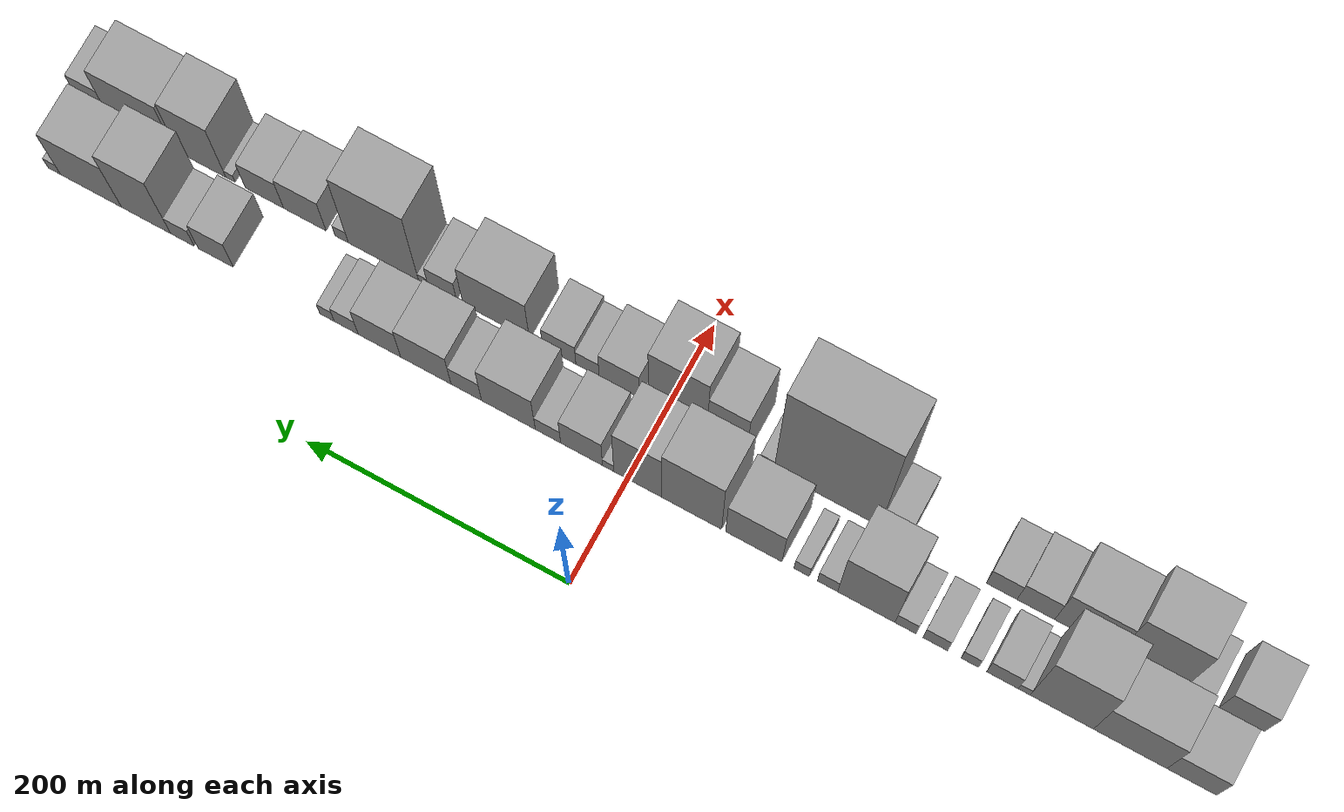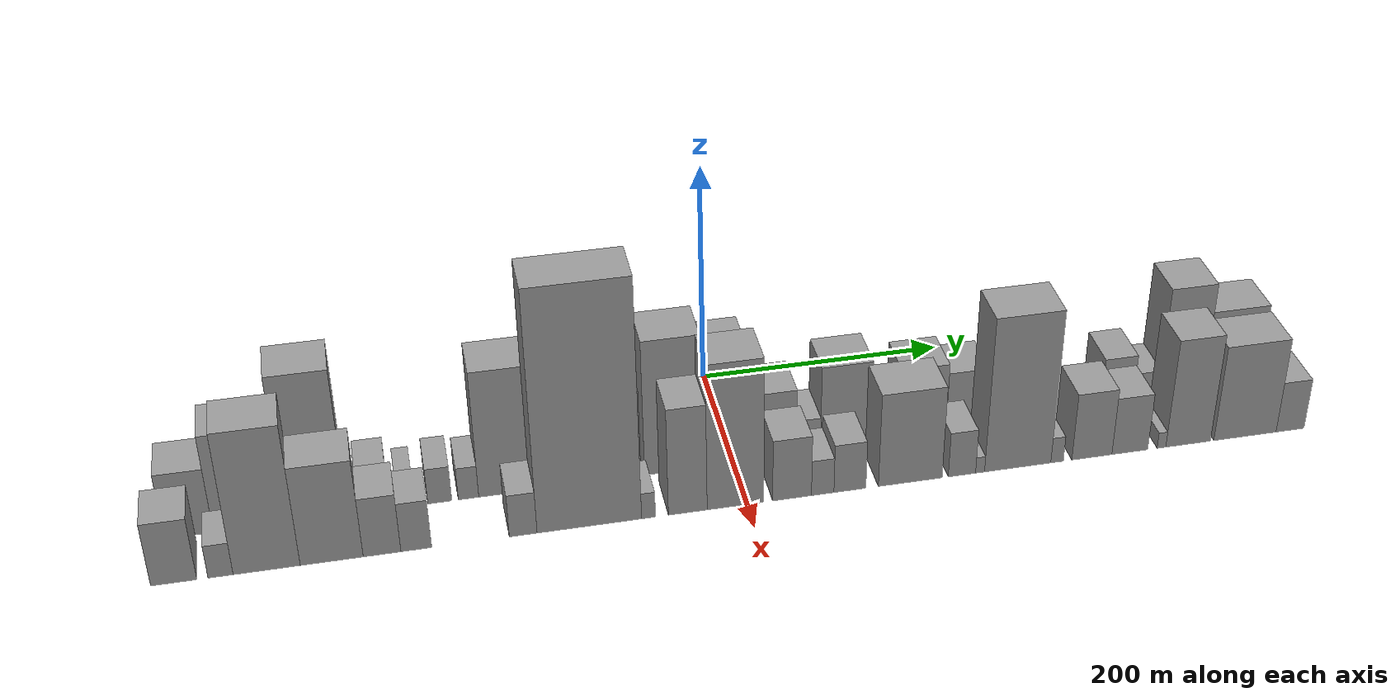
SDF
<sdf version="1.6">
 <world name="default">
  <scene>
   <sky><clouds><speed>12</speed></clouds></sky>
   <ambient>0.4 0.4 0.4 1</ambient>
   <background>0.7 0.7 0.7 1</background>
   <shadows>1</shadows>
  </scene>
  <gravity>0 0 -9.8066</gravity>
  <magnetic_field>6e-06 2.3e-05 -4.2e-05</magnetic_field>
  <physics default="0" name="default_physics" type="ode">
   <ode>
    <solver>
     <type>quick</type>
     <iters>10</iters>
     <sor>1.0</sor>
     <use_dynamic_moi_rescaling>0</use_dynamic_moi_rescaling>
    </solver>
    <constraints>
     <cfm>0</cfm>
     <erp>0.2</erp>
     <contact_max_correcting_vel>100</contact_max_correcting_vel>
     <contact_surface_layer>0.001</contact_surface_layer>
    </constraints>
   </ode>
   <max_step_size>0.004</max_step_size>
   <real_time_factor>1</real_time_factor>
   <real_time_update_rate>250</real_time_update_rate>
  </physics>
  <light name="sun" type="directional">
   <pose>0 0 10 0 0 0</pose>
   <diffuse>0.8 0.8 0.8 1</diffuse>
   <specular>0.2 0.2 0.2 1</specular>
   <attenuation>
    <range>1000</range>
    <constant>0.9</constant>
    <linear>0.01</linear>
    <quadratic>0.001</quadratic>
   </attenuation>
   <direction>-0.5 0.1 -0.9</direction>
  </light>
  <model name="building_1">
   <static>1</static>
   <pose>100.0000 -417.0607 0 0.000000 0.000000 0.000000</pose>
   <link name="link">
    <pose>0 0 30.00 0 0 0</pose>
    <collision name="collision"><geometry><box><size>40.0000 35.8785 60.0000</size></box></geometry></collision>
    <visual name="visual">
     <cast_shadows>0</cast_shadows>
     <geometry><box><size>40.0000 35.8785 60.0000</size></box></geometry>
     <material>
      <script>
       <uri>model://grey_wall/materials/scripts</uri>
       <uri>model://grey_wall/materials/textures</uri>
       <name>vrc/grey_wall</name>
      </script>
     </material>
    </visual>
   </link>
  </model>
  <model name="building_2">
   <static>1</static>
   <pose>100.0000 -372.4183 0 0.000000 0.000000 0.000000</pose>
   <link name="link">
    <pose>0 0 45.00 0 0 0</pose>
    <collision name="collision"><geometry><box><size>40.0000 53.4063 90.0000</size></box></geometry></collision>
    <visual name="visual">
     <cast_shadows>0</cast_shadows>
     <geometry><box><size>40.0000 53.4063 90.0000</size></box></geometry>
     <material>
      <script>
       <uri>model://grey_wall/materials/scripts</uri>
       <uri>model://grey_wall/materials/textures</uri>
       <name>vrc/grey_wall</name>
      </script>
     </material>
    </visual>
   </link>
  </model>
  <model name="building_3">
   <static>1</static>
   <pose>100.0000 -322.5561 0 0.000000 0.000000 0.000000</pose>
   <link name="link">
    <pose>0 0 67.50 0 0 0</pose>
    <collision name="collision"><geometry><box><size>40.0000 46.3182 135.0000</size></box></geometry></collision>
    <visual name="visual">
     <cast_shadows>0</cast_shadows>
     <geometry><box><size>40.0000 46.3182 135.0000</size></box></geometry>
     <material>
      <script>
       <uri>model://grey_wall/materials/scripts</uri>
       <uri>model://grey_wall/materials/textures</uri>
       <name>vrc/grey_wall</name>
      </script>
     </material>
    </visual>
   </link>
  </model>
  <model name="building_4">
   <static>1</static>
   <pose>100.0000 -295.0070 0 0.000000 0.000000 0.000000</pose>
   <link name="link">
    <pose>0 0 9.00 0 0 0</pose>
    <collision name="collision"><geometry><box><size>40.0000 8.7800 18.0000</size></box></geometry></collision>
    <visual name="visual">
     <cast_shadows>0</cast_shadows>
     <geometry><box><size>40.0000 8.7800 18.0000</size></box></geometry>
     <material>
      <script>
       <uri>model://grey_wall/materials/scripts</uri>
       <uri>model://grey_wall/materials/textures</uri>
       <name>vrc/grey_wall</name>
      </script>
     </material>
    </visual>
   </link>
  </model>
  <model name="building_5">
   <static>1</static>
   <pose>100.0000 -279.0320 0 0.000000 0.000000 0.000000</pose>
   <link name="link">
    <pose>0 0 19.50 0 0 0</pose>
    <collision name="collision"><geometry><box><size>40.0000 23.1700 39.0000</size></box></geometry></collision>
    <visual name="visual">
     <cast_shadows>0</cast_shadows>
     <geometry><box><size>40.0000 23.1700 39.0000</size></box></geometry>
     <material>
      <script>
       <uri>model://grey_wall/materials/scripts</uri>
       <uri>model://grey_wall/materials/textures</uri>
       <name>vrc/grey_wall</name>
      </script>
     </material>
    </visual>
   </link>
  </model>
  <model name="building_6">
   <static>1</static>
   <pose>100.0000 -255.0433 0 0.000000 0.000000 0.000000</pose>
   <link name="link">
    <pose>0 0 13.50 0 0 0</pose>
    <collision name="collision"><geometry><box><size>40.0000 12.8074 27.0000</size></box></geometry></collision>
    <visual name="visual">
     <cast_shadows>0</cast_shadows>
     <geometry><box><size>40.0000 12.8074 27.0000</size></box></geometry>
     <material>
      <script>
       <uri>model://grey_wall/materials/scripts</uri>
       <uri>model://grey_wall/materials/textures</uri>
       <name>vrc/grey_wall</name>
      </script>
     </material>
    </visual>
   </link>
  </model>
  <model name="building_7">
   <static>1</static>
   <pose>100.0000 -229.5020 0 0.000000 0.000000 0.000000</pose>
   <link name="link">
    <pose>0 0 16.50 0 0 0</pose>
    <collision name="collision"><geometry><box><size>40.0000 18.2751 33.0000</size></box></geometry></collision>
    <visual name="visual">
     <cast_shadows>0</cast_shadows>
     <geometry><box><size>40.0000 18.2751 33.0000</size></box></geometry>
     <material>
      <script>
       <uri>model://grey_wall/materials/scripts</uri>
       <uri>model://grey_wall/materials/textures</uri>
       <name>vrc/grey_wall</name>
      </script>
     </material>
    </visual>
   </link>
  </model>
  <model name="building_8">
   <static>1</static>
   <pose>100.0000 -207.5110 0 0.000000 0.000000 0.000000</pose>
   <link name="link">
    <pose>0 0 15.00 0 0 0</pose>
    <collision name="collision"><geometry><box><size>40.0000 15.7071 30.0000</size></box></geometry></collision>
    <visual name="visual">
     <cast_shadows>0</cast_shadows>
     <geometry><box><size>40.0000 15.7071 30.0000</size></box></geometry>
     <material>
      <script>
       <uri>model://grey_wall/materials/scripts</uri>
       <uri>model://grey_wall/materials/textures</uri>
       <name>vrc/grey_wall</name>
      </script>
     </material>
    </visual>
   </link>
  </model>
  <model name="building_9">
   <static>1</static>
   <pose>100.0000 -178.4151 0 0.000000 0.000000 0.000000</pose>
   <link name="link">
    <pose>0 0 58.50 0 0 0</pose>
    <collision name="collision"><geometry><box><size>40.0000 42.4847 117.0000</size></box></geometry></collision>
    <visual name="visual">
     <cast_shadows>0</cast_shadows>
     <geometry><box><size>40.0000 42.4847 117.0000</size></box></geometry>
     <material>
      <script>
       <uri>model://grey_wall/materials/scripts</uri>
       <uri>model://grey_wall/materials/textures</uri>
       <name>vrc/grey_wall</name>
      </script>
     </material>
    </visual>
   </link>
  </model>
  <model name="building_10">
   <static>1</static>
   <pose>100.0000 -149.6423 0 0.000000 0.000000 0.000000</pose>
   <link name="link">
    <pose>0 0 15.00 0 0 0</pose>
    <collision name="collision"><geometry><box><size>40.0000 15.0607 30.0000</size></box></geometry></collision>
    <visual name="visual">
     <cast_shadows>0</cast_shadows>
     <geometry><box><size>40.0000 15.0607 30.0000</size></box></geometry>
     <material>
      <script>
       <uri>model://grey_wall/materials/scripts</uri>
       <uri>model://grey_wall/materials/textures</uri>
       <name>vrc/grey_wall</name>
      </script>
     </material>
    </visual>
   </link>
  </model>
  <model name="building_11">
   <static>1</static>
   <pose>100.0000 -130.3610 0 0.000000 0.000000 0.000000</pose>
   <link name="link">
    <pose>0 0 13.50 0 0 0</pose>
    <collision name="collision"><geometry><box><size>40.0000 11.5019 27.0000</size></box></geometry></collision>
    <visual name="visual">
     <cast_shadows>0</cast_shadows>
     <geometry><box><size>40.0000 11.5019 27.0000</size></box></geometry>
     <material>
      <script>
       <uri>model://grey_wall/materials/scripts</uri>
       <uri>model://grey_wall/materials/textures</uri>
       <name>vrc/grey_wall</name>
      </script>
     </material>
    </visual>
   </link>
  </model>
  <model name="building_12">
   <static>1</static>
   <pose>100.0000 -94.5166 0 0.000000 0.000000 0.000000</pose>
   <link name="link">
    <pose>0 0 40.50 0 0 0</pose>
    <collision name="collision"><geometry><box><size>40.0000 42.1870 81.0000</size></box></geometry></collision>
    <visual name="visual">
     <cast_shadows>0</cast_shadows>
     <geometry><box><size>40.0000 42.1870 81.0000</size></box></geometry>
     <material>
      <script>
       <uri>model://grey_wall/materials/scripts</uri>
       <uri>model://grey_wall/materials/textures</uri>
       <name>vrc/grey_wall</name>
      </script>
     </material>
    </visual>
   </link>
  </model>
  <model name="building_13">
   <static>1</static>
   <pose>100.0000 -47.6805 0 0.000000 0.000000 0.000000</pose>
   <link name="link">
    <pose>0 0 63.00 0 0 0</pose>
    <collision name="collision"><geometry><box><size>40.0000 45.4853 126.0000</size></box></geometry></collision>
    <visual name="visual">
     <cast_shadows>0</cast_shadows>
     <geometry><box><size>40.0000 45.4853 126.0000</size></box></geometry>
     <material>
      <script>
       <uri>model://grey_wall/materials/scripts</uri>
       <uri>model://grey_wall/materials/textures</uri>
       <name>vrc/grey_wall</name>
      </script>
     </material>
    </visual>
   </link>
  </model>
  <model name="building_14">
   <static>1</static>
   <pose>100.0000 -7.0533 0 0.000000 0.000000 0.000000</pose>
   <link name="link">
    <pose>0 0 55.50 0 0 0</pose>
    <collision name="collision"><geometry><box><size>40.0000 35.7691 111.0000</size></box></geometry></collision>
    <visual name="visual">
     <cast_shadows>0</cast_shadows>
     <geometry><box><size>40.0000 35.7691 111.0000</size></box></geometry>
     <material>
      <script>
       <uri>model://grey_wall/materials/scripts</uri>
       <uri>model://grey_wall/materials/textures</uri>
       <name>vrc/grey_wall</name>
      </script>
     </material>
    </visual>
   </link>
  </model>
  <model name="building_15">
   <static>1</static>
   <pose>100.0000 15.0990 0 0.000000 0.000000 0.000000</pose>
   <link name="link">
    <pose>0 0 9.00 0 0 0</pose>
    <collision name="collision"><geometry><box><size>40.0000 8.5355 18.0000</size></box></geometry></collision>
    <visual name="visual">
     <cast_shadows>0</cast_shadows>
     <geometry><box><size>40.0000 8.5355 18.0000</size></box></geometry>
     <material>
      <script>
       <uri>model://grey_wall/materials/scripts</uri>
       <uri>model://grey_wall/materials/textures</uri>
       <name>vrc/grey_wall</name>
      </script>
     </material>
    </visual>
   </link>
  </model>
  <model name="building_16">
   <static>1</static>
   <pose>100.0000 35.2143 0 0.000000 0.000000 0.000000</pose>
   <link name="link">
    <pose>0 0 31.50 0 0 0</pose>
    <collision name="collision"><geometry><box><size>40.0000 31.6950 63.0000</size></box></geometry></collision>
    <visual name="visual">
     <cast_shadows>0</cast_shadows>
     <geometry><box><size>40.0000 31.6950 63.0000</size></box></geometry>
     <material>
      <script>
       <uri>model://grey_wall/materials/scripts</uri>
       <uri>model://grey_wall/materials/textures</uri>
       <name>vrc/grey_wall</name>
      </script>
     </material>
    </visual>
   </link>
  </model>
  <model name="building_17">
   <static>1</static>
   <pose>100.0000 60.7238 0 0.000000 0.000000 0.000000</pose>
   <link name="link">
    <pose>0 0 16.50 0 0 0</pose>
    <collision name="collision"><geometry><box><size>40.0000 19.3241 33.0000</size></box></geometry></collision>
    <visual name="visual">
     <cast_shadows>0</cast_shadows>
     <geometry><box><size>40.0000 19.3241 33.0000</size></box></geometry>
     <material>
      <script>
       <uri>model://grey_wall/materials/scripts</uri>
       <uri>model://grey_wall/materials/textures</uri>
       <name>vrc/grey_wall</name>
      </script>
     </material>
    </visual>
   </link>
  </model>
  <model name="building_18">
   <static>1</static>
   <pose>100.0000 90.9148 0 0.000000 0.000000 0.000000</pose>
   <link name="link">
    <pose>0 0 40.50 0 0 0</pose>
    <collision name="collision"><geometry><box><size>40.0000 41.0580 81.0000</size></box></geometry></collision>
    <visual name="visual">
     <cast_shadows>0</cast_shadows>
     <geometry><box><size>40.0000 41.0580 81.0000</size></box></geometry>
     <material>
      <script>
       <uri>model://grey_wall/materials/scripts</uri>
       <uri>model://grey_wall/materials/textures</uri>
       <name>vrc/grey_wall</name>
      </script>
     </material>
    </visual>
   </link>
  </model>
  <model name="building_19">
   <static>1</static>
   <pose>100.0000 123.1200 0 0.000000 0.000000 0.000000</pose>
   <link name="link">
    <pose>0 0 22.50 0 0 0</pose>
    <collision name="collision"><geometry><box><size>40.0000 23.3524 45.0000</size></box></geometry></collision>
    <visual name="visual">
     <cast_shadows>0</cast_shadows>
     <geometry><box><size>40.0000 23.3524 45.0000</size></box></geometry>
     <material>
      <script>
       <uri>model://grey_wall/materials/scripts</uri>
       <uri>model://grey_wall/materials/textures</uri>
       <name>vrc/grey_wall</name>
      </script>
     </material>
    </visual>
   </link>
  </model>
  <model name="building_20">
   <static>1</static>
   <pose>100.0000 154.1357 0 0.000000 0.000000 0.000000</pose>
   <link name="link">
    <pose>0 0 34.50 0 0 0</pose>
    <collision name="collision"><geometry><box><size>40.0000 38.6789 69.0000</size></box></geometry></collision>
    <visual name="visual">
     <cast_shadows>0</cast_shadows>
     <geometry><box><size>40.0000 38.6789 69.0000</size></box></geometry>
     <material>
      <script>
       <uri>model://grey_wall/materials/scripts</uri>
       <uri>model://grey_wall/materials/textures</uri>
       <name>vrc/grey_wall</name>
      </script>
     </material>
    </visual>
   </link>
  </model>
  <model name="building_21">
   <static>1</static>
   <pose>100.0000 189.8916 0 0.000000 0.000000 0.000000</pose>
   <link name="link">
    <pose>0 0 30.00 0 0 0</pose>
    <collision name="collision"><geometry><box><size>40.0000 32.8330 60.0000</size></box></geometry></collision>
    <visual name="visual">
     <cast_shadows>0</cast_shadows>
     <geometry><box><size>40.0000 32.8330 60.0000</size></box></geometry>
     <material>
      <script>
       <uri>model://grey_wall/materials/scripts</uri>
       <uri>model://grey_wall/materials/textures</uri>
       <name>vrc/grey_wall</name>
      </script>
     </material>
    </visual>
   </link>
  </model>
  <model name="building_22">
   <static>1</static>
   <pose>100.0000 215.5773 0 0.000000 0.000000 0.000000</pose>
   <link name="link">
    <pose>0 0 16.50 0 0 0</pose>
    <collision name="collision"><geometry><box><size>40.0000 18.5383 33.0000</size></box></geometry></collision>
    <visual name="visual">
     <cast_shadows>0</cast_shadows>
     <geometry><box><size>40.0000 18.5383 33.0000</size></box></geometry>
     <material>
      <script>
       <uri>model://grey_wall/materials/scripts</uri>
       <uri>model://grey_wall/materials/textures</uri>
       <name>vrc/grey_wall</name>
      </script>
     </material>
    </visual>
   </link>
  </model>
  <model name="building_23">
   <static>1</static>
   <pose>100.0000 230.4463 0 0.000000 0.000000 0.000000</pose>
   <link name="link">
    <pose>0 0 12.00 0 0 0</pose>
    <collision name="collision"><geometry><box><size>40.0000 11.1996 24.0000</size></box></geometry></collision>
    <visual name="visual">
     <cast_shadows>0</cast_shadows>
     <geometry><box><size>40.0000 11.1996 24.0000</size></box></geometry>
     <material>
      <script>
       <uri>model://grey_wall/materials/scripts</uri>
       <uri>model://grey_wall/materials/textures</uri>
       <name>vrc/grey_wall</name>
      </script>
     </material>
    </visual>
   </link>
  </model>
  <model name="building_24">
   <static>1</static>
   <pose>100.0000 317.1471 0 0.000000 0.000000 0.000000</pose>
   <link name="link">
    <pose>0 0 27.00 0 0 0</pose>
    <collision name="collision"><geometry><box><size>40.0000 27.4007 54.0000</size></box></geometry></collision>
    <visual name="visual">
     <cast_shadows>0</cast_shadows>
     <geometry><box><size>40.0000 27.4007 54.0000</size></box></geometry>
     <material>
      <script>
       <uri>model://grey_wall/materials/scripts</uri>
       <uri>model://grey_wall/materials/textures</uri>
       <name>vrc/grey_wall</name>
      </script>
     </material>
    </visual>
   </link>
  </model>
  <model name="building_25">
   <static>1</static>
   <pose>100.0000 343.0963 0 0.000000 0.000000 0.000000</pose>
   <link name="link">
    <pose>0 0 18.00 0 0 0</pose>
    <collision name="collision"><geometry><box><size>40.0000 18.4977 36.0000</size></box></geometry></collision>
    <visual name="visual">
     <cast_shadows>0</cast_shadows>
     <geometry><box><size>40.0000 18.4977 36.0000</size></box></geometry>
     <material>
      <script>
       <uri>model://grey_wall/materials/scripts</uri>
       <uri>model://grey_wall/materials/textures</uri>
       <name>vrc/grey_wall</name>
      </script>
     </material>
    </visual>
   </link>
  </model>
  <model name="building_26">
   <static>1</static>
   <pose>100.0000 371.6113 0 0.000000 0.000000 0.000000</pose>
   <link name="link">
    <pose>0 0 57.00 0 0 0</pose>
    <collision name="collision"><geometry><box><size>40.0000 38.5324 114.0000</size></box></geometry></collision>
    <visual name="visual">
     <cast_shadows>0</cast_shadows>
     <geometry><box><size>40.0000 38.5324 114.0000</size></box></geometry>
     <material>
      <script>
       <uri>model://grey_wall/materials/scripts</uri>
       <uri>model://grey_wall/materials/textures</uri>
       <name>vrc/grey_wall</name>
      </script>
     </material>
    </visual>
   </link>
  </model>
  <model name="building_27">
   <static>1</static>
   <pose>100.0000 415.0386 0 0.000000 0.000000 0.000000</pose>
   <link name="link">
    <pose>0 0 43.50 0 0 0</pose>
    <collision name="collision"><geometry><box><size>40.0000 48.3222 87.0000</size></box></geometry></collision>
    <visual name="visual">
     <cast_shadows>0</cast_shadows>
     <geometry><box><size>40.0000 48.3222 87.0000</size></box></geometry>
     <material>
      <script>
       <uri>model://grey_wall/materials/scripts</uri>
       <uri>model://grey_wall/materials/textures</uri>
       <name>vrc/grey_wall</name>
      </script>
     </material>
    </visual>
   </link>
  </model>
  <model name="building_28">
   <static>1</static>
   <pose>100.0000 444.0721 0 0.000000 0.000000 0.000000</pose>
   <link name="link">
    <pose>0 0 10.50 0 0 0</pose>
    <collision name="collision"><geometry><box><size>40.0000 9.7447 21.0000</size></box></geometry></collision>
    <visual name="visual">
     <cast_shadows>0</cast_shadows>
     <geometry><box><size>40.0000 9.7447 21.0000</size></box></geometry>
     <material>
      <script>
       <uri>model://grey_wall/materials/scripts</uri>
       <uri>model://grey_wall/materials/textures</uri>
       <name>vrc/grey_wall</name>
      </script>
     </material>
    </visual>
   </link>
  </model>
  <model name="building_29">
   <static>1</static>
   <pose>152.0000 -427.5715 0 0.000000 0.000000 0.000000</pose>
   <link name="link">
    <pose>0 0 28.50 0 0 0</pose>
    <collision name="collision"><geometry><box><size>40.0000 32.8571 57.0000</size></box></geometry></collision>
    <visual name="visual">
     <cast_shadows>0</cast_shadows>
     <geometry><box><size>40.0000 32.8571 57.0000</size></box></geometry>
     <material>
      <script>
       <uri>model://grey_wall/materials/scripts</uri>
       <uri>model://grey_wall/materials/textures</uri>
       <name>vrc/grey_wall</name>
      </script>
     </material>
    </visual>
   </link>
  </model>
  <model name="building_30">
   <static>1</static>
   <pose>152.0000 -394.1494 0 0.000000 0.000000 0.000000</pose>
   <link name="link">
    <pose>0 0 15.00 0 0 0</pose>
    <collision name="collision"><geometry><box><size>40.0000 17.9870 30.0000</size></box></geometry></collision>
    <visual name="visual">
     <cast_shadows>0</cast_shadows>
     <geometry><box><size>40.0000 17.9870 30.0000</size></box></geometry>
     <material>
      <script>
       <uri>model://grey_wall/materials/scripts</uri>
       <uri>model://grey_wall/materials/textures</uri>
       <name>vrc/grey_wall</name>
      </script>
     </material>
    </visual>
   </link>
  </model>
  <model name="building_31">
   <static>1</static>
   <pose>152.0000 -360.9270 0 0.000000 0.000000 0.000000</pose>
   <link name="link">
    <pose>0 0 64.50 0 0 0</pose>
    <collision name="collision"><geometry><box><size>40.0000 48.4580 129.0000</size></box></geometry></collision>
    <visual name="visual">
     <cast_shadows>0</cast_shadows>
     <geometry><box><size>40.0000 48.4580 129.0000</size></box></geometry>
     <material>
      <script>
       <uri>model://grey_wall/materials/scripts</uri>
       <uri>model://grey_wall/materials/textures</uri>
       <name>vrc/grey_wall</name>
      </script>
     </material>
    </visual>
   </link>
  </model>
  <model name="building_32">
   <static>1</static>
   <pose>152.0000 -313.7153 0 0.000000 0.000000 0.000000</pose>
   <link name="link">
    <pose>0 0 45.00 0 0 0</pose>
    <collision name="collision"><geometry><box><size>40.0000 45.9654 90.0000</size></box></geometry></collision>
    <visual name="visual">
     <cast_shadows>0</cast_shadows>
     <geometry><box><size>40.0000 45.9654 90.0000</size></box></geometry>
     <material>
      <script>
       <uri>model://grey_wall/materials/scripts</uri>
       <uri>model://grey_wall/materials/textures</uri>
       <name>vrc/grey_wall</name>
      </script>
     </material>
    </visual>
   </link>
  </model>
  <model name="building_33">
   <static>1</static>
   <pose>152.0000 -276.8558 0 0.000000 0.000000 0.000000</pose>
   <link name="link">
    <pose>0 0 27.00 0 0 0</pose>
    <collision name="collision"><geometry><box><size>40.0000 27.7535 54.0000</size></box></geometry></collision>
    <visual name="visual">
     <cast_shadows>0</cast_shadows>
     <geometry><box><size>40.0000 27.7535 54.0000</size></box></geometry>
     <material>
      <script>
       <uri>model://grey_wall/materials/scripts</uri>
       <uri>model://grey_wall/materials/textures</uri>
       <name>vrc/grey_wall</name>
      </script>
     </material>
    </visual>
   </link>
  </model>
  <model name="building_34">
   <static>1</static>
   <pose>152.0000 -251.6086 0 0.000000 0.000000 0.000000</pose>
   <link name="link">
    <pose>0 0 22.50 0 0 0</pose>
    <collision name="collision"><geometry><box><size>40.0000 22.7409 45.0000</size></box></geometry></collision>
    <visual name="visual">
     <cast_shadows>0</cast_shadows>
     <geometry><box><size>40.0000 22.7409 45.0000</size></box></geometry>
     <material>
      <script>
       <uri>model://grey_wall/materials/scripts</uri>
       <uri>model://grey_wall/materials/textures</uri>
       <name>vrc/grey_wall</name>
      </script>
     </material>
    </visual>
   </link>
  </model>
  <model name="building_35">
   <static>1</static>
   <pose>152.0000 -171.8681 0 0.000000 0.000000 0.000000</pose>
   <link name="link">
    <pose>0 0 19.50 0 0 0</pose>
    <collision name="collision"><geometry><box><size>40.0000 20.9134 39.0000</size></box></geometry></collision>
    <visual name="visual">
     <cast_shadows>0</cast_shadows>
     <geometry><box><size>40.0000 20.9134 39.0000</size></box></geometry>
     <material>
      <script>
       <uri>model://grey_wall/materials/scripts</uri>
       <uri>model://grey_wall/materials/textures</uri>
       <name>vrc/grey_wall</name>
      </script>
     </material>
    </visual>
   </link>
  </model>
  <model name="building_36">
   <static>1</static>
   <pose>152.0000 -121.5901 0 0.000000 0.000000 0.000000</pose>
   <link name="link">
    <pose>0 0 109.50 0 0 0</pose>
    <collision name="collision"><geometry><box><size>40.0000 79.6426 219.0000</size></box></geometry></collision>
    <visual name="visual">
     <cast_shadows>0</cast_shadows>
     <geometry><box><size>40.0000 79.6426 219.0000</size></box></geometry>
     <material>
      <script>
       <uri>model://grey_wall/materials/scripts</uri>
       <uri>model://grey_wall/materials/textures</uri>
       <name>vrc/grey_wall</name>
      </script>
     </material>
    </visual>
   </link>
  </model>
  <model name="building_37">
   <static>1</static>
   <pose>152.0000 -76.4510 0 0.000000 0.000000 0.000000</pose>
   <link name="link">
    <pose>0 0 12.00 0 0 0</pose>
    <collision name="collision"><geometry><box><size>40.0000 10.6355 24.0000</size></box></geometry></collision>
    <visual name="visual">
     <cast_shadows>0</cast_shadows>
     <geometry><box><size>40.0000 10.6355 24.0000</size></box></geometry>
     <material>
      <script>
       <uri>model://grey_wall/materials/scripts</uri>
       <uri>model://grey_wall/materials/textures</uri>
       <name>vrc/grey_wall</name>
      </script>
     </material>
    </visual>
   </link>
  </model>
  <model name="building_38">
   <static>1</static>
   <pose>152.0000 -46.1217 0 0.000000 0.000000 0.000000</pose>
   <link name="link">
    <pose>0 0 49.50 0 0 0</pose>
    <collision name="collision"><geometry><box><size>40.0000 30.0231 99.0000</size></box></geometry></collision>
    <visual name="visual">
     <cast_shadows>0</cast_shadows>
     <geometry><box><size>40.0000 30.0231 99.0000</size></box></geometry>
     <material>
      <script>
       <uri>model://grey_wall/materials/scripts</uri>
       <uri>model://grey_wall/materials/textures</uri>
       <name>vrc/grey_wall</name>
      </script>
     </material>
    </visual>
   </link>
  </model>
  <model name="building_39">
   <static>1</static>
   <pose>152.0000 -9.0169 0 0.000000 0.000000 0.000000</pose>
   <link name="link">
    <pose>0 0 67.50 0 0 0</pose>
    <collision name="collision"><geometry><box><size>40.0000 44.1866 135.0000</size></box></geometry></collision>
    <visual name="visual">
     <cast_shadows>0</cast_shadows>
     <geometry><box><size>40.0000 44.1866 135.0000</size></box></geometry>
     <material>
      <script>
       <uri>model://grey_wall/materials/scripts</uri>
       <uri>model://grey_wall/materials/textures</uri>
       <name>vrc/grey_wall</name>
      </script>
     </material>
    </visual>
   </link>
  </model>
  <model name="building_40">
   <static>1</static>
   <pose>152.0000 35.3569 0 0.000000 0.000000 0.000000</pose>
   <link name="link">
    <pose>0 0 28.50 0 0 0</pose>
    <collision name="collision"><geometry><box><size>40.0000 30.5609 57.0000</size></box></geometry></collision>
    <visual name="visual">
     <cast_shadows>0</cast_shadows>
     <geometry><box><size>40.0000 30.5609 57.0000</size></box></geometry>
     <material>
      <script>
       <uri>model://grey_wall/materials/scripts</uri>
       <uri>model://grey_wall/materials/textures</uri>
       <name>vrc/grey_wall</name>
      </script>
     </material>
    </visual>
   </link>
  </model>
  <model name="building_41">
   <static>1</static>
   <pose>152.0000 59.5287 0 0.000000 0.000000 0.000000</pose>
   <link name="link">
    <pose>0 0 16.50 0 0 0</pose>
    <collision name="collision"><geometry><box><size>40.0000 17.7826 33.0000</size></box></geometry></collision>
    <visual name="visual">
     <cast_shadows>0</cast_shadows>
     <geometry><box><size>40.0000 17.7826 33.0000</size></box></geometry>
     <material>
      <script>
       <uri>model://grey_wall/materials/scripts</uri>
       <uri>model://grey_wall/materials/textures</uri>
       <name>vrc/grey_wall</name>
      </script>
     </material>
    </visual>
   </link>
  </model>
  <model name="building_42">
   <static>1</static>
   <pose>152.0000 81.1383 0 0.000000 0.000000 0.000000</pose>
   <link name="link">
    <pose>0 0 22.50 0 0 0</pose>
    <collision name="collision"><geometry><box><size>40.0000 25.4367 45.0000</size></box></geometry></collision>
    <visual name="visual">
     <cast_shadows>0</cast_shadows>
     <geometry><box><size>40.0000 25.4367 45.0000</size></box></geometry>
     <material>
      <script>
       <uri>model://grey_wall/materials/scripts</uri>
       <uri>model://grey_wall/materials/textures</uri>
       <name>vrc/grey_wall</name>
      </script>
     </material>
    </visual>
   </link>
  </model>
  <model name="building_43">
   <static>1</static>
   <pose>152.0000 129.4880 0 0.000000 0.000000 0.000000</pose>
   <link name="link">
    <pose>0 0 43.50 0 0 0</pose>
    <collision name="collision"><geometry><box><size>40.0000 51.2626 87.0000</size></box></geometry></collision>
    <visual name="visual">
     <cast_shadows>0</cast_shadows>
     <geometry><box><size>40.0000 51.2626 87.0000</size></box></geometry>
     <material>
      <script>
       <uri>model://grey_wall/materials/scripts</uri>
       <uri>model://grey_wall/materials/textures</uri>
       <name>vrc/grey_wall</name>
      </script>
     </material>
    </visual>
   </link>
  </model>
  <model name="building_44">
   <static>1</static>
   <pose>152.0000 171.1954 0 0.000000 0.000000 0.000000</pose>
   <link name="link">
    <pose>0 0 21.00 0 0 0</pose>
    <collision name="collision"><geometry><box><size>40.0000 22.1522 42.0000</size></box></geometry></collision>
    <visual name="visual">
     <cast_shadows>0</cast_shadows>
     <geometry><box><size>40.0000 22.1522 42.0000</size></box></geometry>
     <material>
      <script>
       <uri>model://grey_wall/materials/scripts</uri>
       <uri>model://grey_wall/materials/textures</uri>
       <name>vrc/grey_wall</name>
      </script>
     </material>
    </visual>
   </link>
  </model>
  <model name="building_45">
   <static>1</static>
   <pose>152.0000 185.9325 0 0.000000 0.000000 0.000000</pose>
   <link name="link">
    <pose>0 0 7.50 0 0 0</pose>
    <collision name="collision"><geometry><box><size>40.0000 7.3219 15.0000</size></box></geometry></collision>
    <visual name="visual">
     <cast_shadows>0</cast_shadows>
     <geometry><box><size>40.0000 7.3219 15.0000</size></box></geometry>
     <material>
      <script>
       <uri>model://grey_wall/materials/scripts</uri>
       <uri>model://grey_wall/materials/textures</uri>
       <name>vrc/grey_wall</name>
      </script>
     </material>
    </visual>
   </link>
  </model>
  <model name="building_46">
   <static>1</static>
   <pose>152.0000 216.7526 0 0.000000 0.000000 0.000000</pose>
   <link name="link">
    <pose>0 0 72.00 0 0 0</pose>
    <collision name="collision"><geometry><box><size>40.0000 54.3182 144.0000</size></box></geometry></collision>
    <visual name="visual">
     <cast_shadows>0</cast_shadows>
     <geometry><box><size>40.0000 54.3182 144.0000</size></box></geometry>
     <material>
      <script>
       <uri>model://grey_wall/materials/scripts</uri>
       <uri>model://grey_wall/materials/textures</uri>
       <name>vrc/grey_wall</name>
      </script>
     </material>
    </visual>
   </link>
  </model>
  <model name="building_47">
   <static>1</static>
   <pose>152.0000 249.0965 0 0.000000 0.000000 0.000000</pose>
   <link name="link">
    <pose>0 0 12.00 0 0 0</pose>
    <collision name="collision"><geometry><box><size>40.0000 10.3696 24.0000</size></box></geometry></collision>
    <visual name="visual">
     <cast_shadows>0</cast_shadows>
     <geometry><box><size>40.0000 10.3696 24.0000</size></box></geometry>
     <material>
      <script>
       <uri>model://grey_wall/materials/scripts</uri>
       <uri>model://grey_wall/materials/textures</uri>
       <name>vrc/grey_wall</name>
      </script>
     </material>
    </visual>
   </link>
  </model>
  <model name="building_48">
   <static>1</static>
   <pose>152.0000 277.8902 0 0.000000 0.000000 0.000000</pose>
   <link name="link">
    <pose>0 0 31.50 0 0 0</pose>
    <collision name="collision"><geometry><box><size>40.0000 33.2176 63.0000</size></box></geometry></collision>
    <visual name="visual">
     <cast_shadows>0</cast_shadows>
     <geometry><box><size>40.0000 33.2176 63.0000</size></box></geometry>
     <material>
      <script>
       <uri>model://grey_wall/materials/scripts</uri>
       <uri>model://grey_wall/materials/textures</uri>
       <name>vrc/grey_wall</name>
      </script>
     </material>
    </visual>
   </link>
  </model>
  <model name="building_49">
   <static>1</static>
   <pose>152.0000 309.4813 0 0.000000 0.000000 0.000000</pose>
   <link name="link">
    <pose>0 0 27.00 0 0 0</pose>
    <collision name="collision"><geometry><box><size>40.0000 29.9647 54.0000</size></box></geometry></collision>
    <visual name="visual">
     <cast_shadows>0</cast_shadows>
     <geometry><box><size>40.0000 29.9647 54.0000</size></box></geometry>
     <material>
      <script>
       <uri>model://grey_wall/materials/scripts</uri>
       <uri>model://grey_wall/materials/textures</uri>
       <name>vrc/grey_wall</name>
      </script>
     </material>
    </visual>
   </link>
  </model>
  <model name="building_50">
   <static>1</static>
   <pose>152.0000 336.0698 0 0.000000 0.000000 0.000000</pose>
   <link name="link">
    <pose>0 0 7.50 0 0 0</pose>
    <collision name="collision"><geometry><box><size>40.0000 7.2123 15.0000</size></box></geometry></collision>
    <visual name="visual">
     <cast_shadows>0</cast_shadows>
     <geometry><box><size>40.0000 7.2123 15.0000</size></box></geometry>
     <material>
      <script>
       <uri>model://grey_wall/materials/scripts</uri>
       <uri>model://grey_wall/materials/textures</uri>
       <name>vrc/grey_wall</name>
      </script>
     </material>
    </visual>
   </link>
  </model>
  <model name="building_51">
   <static>1</static>
   <pose>152.0000 358.5122 0 0.000000 0.000000 0.000000</pose>
   <link name="link">
    <pose>0 0 51.00 0 0 0</pose>
    <collision name="collision"><geometry><box><size>40.0000 37.6725 102.0000</size></box></geometry></collision>
    <visual name="visual">
     <cast_shadows>0</cast_shadows>
     <geometry><box><size>40.0000 37.6725 102.0000</size></box></geometry>
     <material>
      <script>
       <uri>model://grey_wall/materials/scripts</uri>
       <uri>model://grey_wall/materials/textures</uri>
       <name>vrc/grey_wall</name>
      </script>
     </material>
    </visual>
   </link>
  </model>
  <model name="building_52">
   <static>1</static>
   <pose>152.0000 406.8783 0 0.000000 0.000000 0.000000</pose>
   <link name="link">
    <pose>0 0 45.00 0 0 0</pose>
    <collision name="collision"><geometry><box><size>40.0000 53.0596 90.0000</size></box></geometry></collision>
    <visual name="visual">
     <cast_shadows>0</cast_shadows>
     <geometry><box><size>40.0000 53.0596 90.0000</size></box></geometry>
     <material>
      <script>
       <uri>model://grey_wall/materials/scripts</uri>
       <uri>model://grey_wall/materials/textures</uri>
       <name>vrc/grey_wall</name>
      </script>
     </material>
    </visual>
   </link>
  </model>
  <model name="building_53">
   <static>1</static>
   <pose>152.0000 445.4090 0 0.000000 0.000000 0.000000</pose>
   <link name="link">
    <pose>0 0 24.00 0 0 0</pose>
    <collision name="collision"><geometry><box><size>40.0000 24.0017 48.0000</size></box></geometry></collision>
    <visual name="visual">
     <cast_shadows>0</cast_shadows>
     <geometry><box><size>40.0000 24.0017 48.0000</size></box></geometry>
     <material>
      <script>
       <uri>model://grey_wall/materials/scripts</uri>
       <uri>model://grey_wall/materials/textures</uri>
       <name>vrc/grey_wall</name>
      </script>
     </material>
    </visual>
   </link>
  </model>
 </world>
</sdf>
